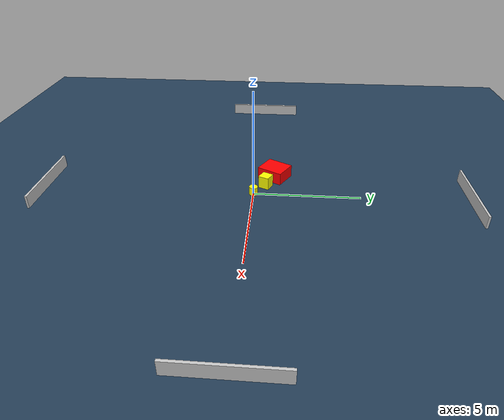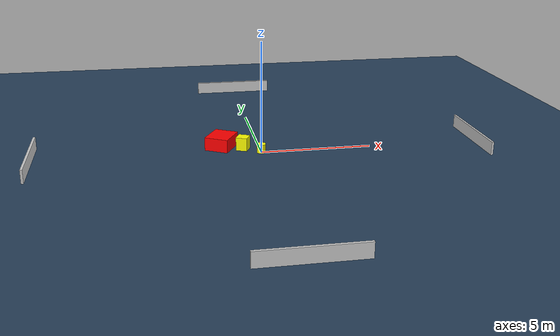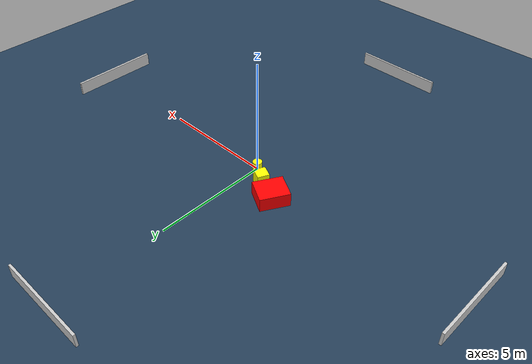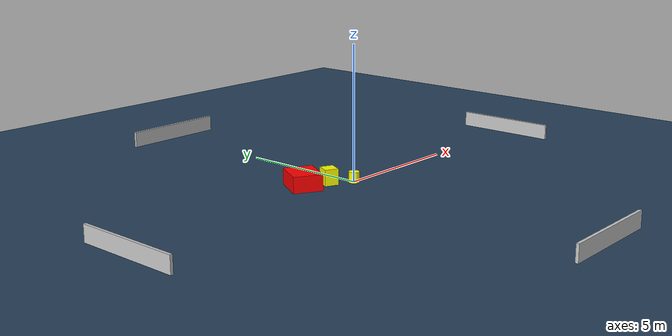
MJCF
<?xml version="1.0" ?>
<mujoco model="generated_environment">
  <option timestep="0.01" integrator="RK4" cone="elliptic"/>
  <default>
    <geom density="1"/>
  </default>
  <asset>
    <texture builtin="gradient" height="3072" name="skybox" rgb1="0.3 0.5 0.7" rgb2="0 0 0" type="skybox" width="512"/>
    <texture builtin="checker" height="300" name="groundplane" rgb1="0.2 0.3 0.4" rgb2="0.1 0.2 0.3" type="2d" width="300"/>
    <material name="groundplane" reflectance="0.2" texrepeat="5 5" texture="groundplane"/>
  </asset>
  <worldbody>
    <light dir="0 0 -1" directional="true" pos="0 0 1.5"/>
    <geom condim="3" friction="0.5 0.005 0.001" material="groundplane" name="floor" pos="0 0 0" size="0 0 0.05" type="plane"/>
    <body name="walls">
      <geom name="wall_1" condim="4" pos="-10.0 0.0 0.3" rgba="0.800000011920929 0.800000011920929 0.800000011920929 1.0" size="0.05 2.0 0.3" type="box"/>
      <geom name="wall_2" condim="4" pos="10.0 0.0 0.3" rgba="0.800000011920929 0.800000011920929 0.800000011920929 1.0" size="0.05 2.0 0.3" type="box"/>
      <geom name="wall_3" condim="4" pos="0.0 -10.0 0.3" rgba="0.800000011920929 0.800000011920929 0.800000011920929 1.0" size="2.0 0.05 0.3" type="box"/>
      <geom name="wall_4" condim="4" pos="0.0 10.0 0.3" rgba="0.800000011920929 0.800000011920929 0.800000011920929 1.0" size="2.0 0.05 0.3" type="box"/>
    </body>
    <body name="robot">
      <joint name="joint_x" type="slide" pos="0 0 0" axis="1 0 0"/>
      <joint name="joint_y" type="slide" pos="0 0 0" axis="0 1 0"/>
      <geom name="robot" type="cylinder" pos="0.0 0.0 0.2" size="0.2 0.2 0.0" mass="5.0" friction="1.0 0.005 0.0001" condim="4" rgba="1.0 1.0 0.0 1.0"/>
    </body>
    <body name="obstacle_1_movable">
      <geom name="obstacle_1_movable" condim="4" pos="-0.7502808286115255 0.5344642249614724 0.3" euler="0 0 155.32631573366683" friction="0.0 0.005 0.001" rgba="1.0 1.0 0.0 1.0" size="0.2551341765207029 0.25563405444367615 0.3" type="box" mass="0.1"/>
      <joint type="free"/>
    </body>
    <body name="obstacle_2_static">
      <geom name="obstacle_2_static" condim="4" pos="-1.679308758116662 0.9329868200354421 0.3" euler="0 0 330.691080372293" friction="0.0 0.005 0.001" rgba="1.0 0.0 0.0 1.0" size="0.5449662805194067 0.6346801447037296 0.3" type="box"/>
    </body>
  </worldbody>
  <actuator>
    <motor name="actuator_x" joint="joint_x" gear="1" ctrlrange="-1 1"/>
    <motor name="actuator_y" joint="joint_y" gear="1" ctrlrange="-1 1"/>
  </actuator>
</mujoco>
